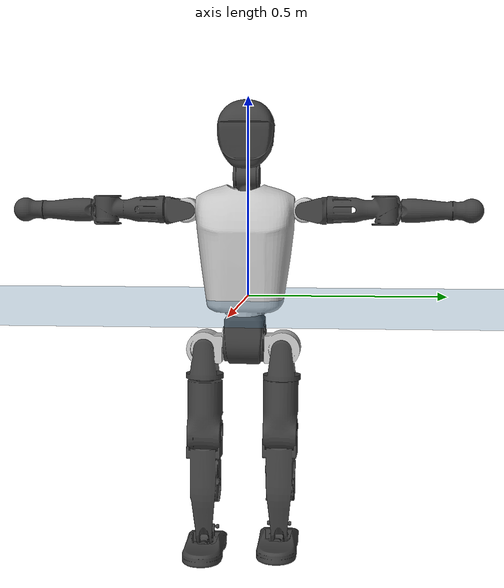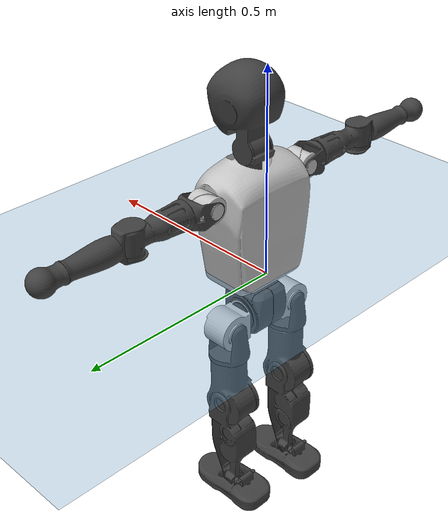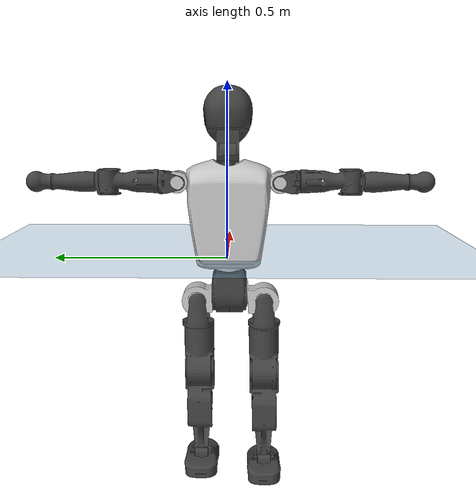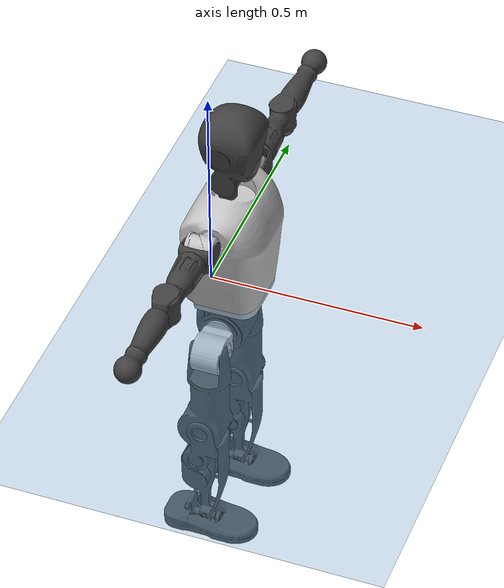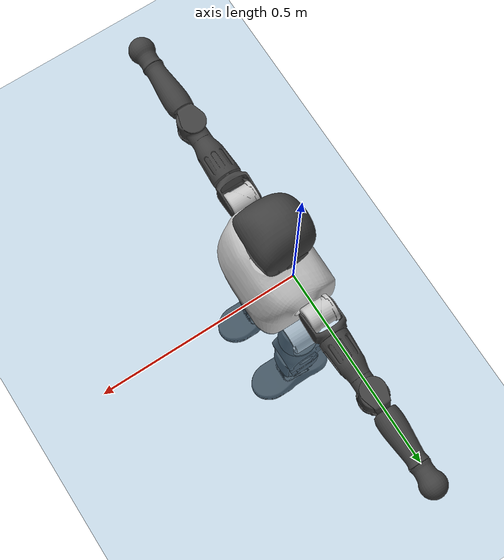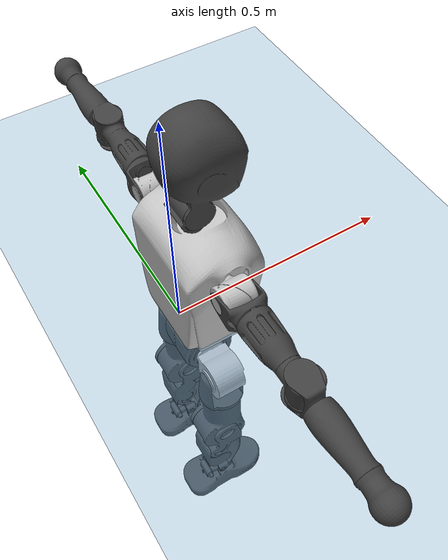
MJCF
<mujoco model="T1">
  <compiler angle="radian" assetdir="assets" balanceinertia="true" inertiafromgeom="false"/>

  <option timestep="0.005" density="1.2" viscosity="2e-05"/>

  <size nkey="1"/>

  <visual>
    <quality shadowsize="8192"/>
    <map shadowclip="0.5"/>
  </visual>

  <default>
    <default class="/">
      <joint armature="0.01" damping="0.01" frictionloss="0.1"/>
      <geom contype="0" conaffinity="0" group="1" solref="-1000 -80"/>
      <site size="0.01 0.005 0.005" group="5"/>
      <general forcelimited="true" biastype="affine" gainprm="25" biasprm="0 -25 -0.6"/>
      <default class="t1">
        <geom rgba="0.25 0.25 0.25 1"/>
        <default class="visual">
          <geom type="mesh" group="2"/>
        </default>
        <default class="collision">
          <geom group="3"/>
        </default>
        <default class="foot">
          <geom size="0.1115 0.05 0.015" type="box" condim="6" group="4" priority="1" solimp="0.015 1 0.015"/>
        </default>
        <default class="reward_collision_sphere">
          <geom group="5" rgba="1 0 0 1"/>
        </default>
      </default>
    </default>
  </default>

  <asset>
    <texture type="skybox" colorspace="auto" name="//unnamed_texture_0" builtin="gradient" rgb1="0.95 0.95 0.95" rgb2="0.95 0.95 0.95" width="100" height="600"/>
    <texture type="2d" colorspace="auto" name="texplane" builtin="checker" rgb1="0.345 0.575 0.748" rgb2="0.345 0.575 0.748" markrgb="1 1 1" width="512" height="512"/>
    <material name="MatPlane" class="/" texture="texplane" texuniform="true" texrepeat="2 2" specular="0.9"/>
    <mesh name="Trunk" class="/" file="Trunk.stl"/>
    <mesh name="H1" class="/" file="H1.stl"/>
    <mesh name="H2" class="/" file="H2.stl"/>
    <mesh name="AL1" class="/" file="AL1.stl"/>
    <mesh name="AL2" class="/" file="AL2.stl"/>
    <mesh name="AL3" class="/" file="AL3.stl"/>
    <mesh name="left_hand_link" class="/" file="left_hand_link.stl"/>
    <mesh name="AR1" class="/" file="AR1.stl"/>
    <mesh name="AR2" class="/" file="AR2.stl"/>
    <mesh name="AR3" class="/" file="AR3.stl"/>
    <mesh name="right_hand_link" class="/" file="right_hand_link.stl"/>
    <mesh name="Waist" class="/" file="Waist.stl"/>
    <mesh name="Hip_Pitch_Left" class="/" file="Hip_Pitch_Left.stl"/>
    <mesh name="Hip_Roll_Left" class="/" file="Hip_Roll_Left.stl"/>
    <mesh name="Hip_Yaw_Left" class="/" file="Hip_Yaw_Left.stl"/>
    <mesh name="Shank_Left" class="/" file="Shank_Left.stl"/>
    <mesh name="Ankle_Cross_Left" class="/" file="Ankle_Cross_Left.stl"/>
    <mesh name="left_foot_link" class="/" file="left_foot_link.stl"/>
    <mesh name="Hip_Pitch_Right" class="/" file="Hip_Pitch_Right.stl"/>
    <mesh name="Hip_Roll_Right" class="/" file="Hip_Roll_Right.stl"/>
    <mesh name="Hip_Yaw_Right" class="/" file="Hip_Yaw_Right.stl"/>
    <mesh name="Shank_Right" class="/" file="Shank_Right.stl"/>
    <mesh name="Ankle_Cross_Right" class="/" file="Ankle_Cross_Right.stl"/>
    <mesh name="right_foot_link" class="/" file="right_foot_link.stl"/>
  </asset>

  <worldbody>
    <geom name="floor" class="/" size="100 100 0.125" type="plane" group="0" material="MatPlane"/>
    <light name="toplight_shadow" class="/" pos="0 0 5" dir="0.0990148 0.0990148 -0.990148" type="directional" ambient="0.04 0.04 0.04" diffuse="0.55 0.55 0.55" specular="0.12 0.12 0.12"/>
    <light name="toplight_fill" class="/" pos="0 0 5" dir="0.0990148 0.0990148 -0.990148" type="directional" castshadow="false" ambient="0.04 0.04 0.04" diffuse="0.3 0.3 0.3" specular="0.08 0.08 0.08"/>
    <body name="trunk" childclass="t1" pos="-0.000764711 -0.00277851 0.00266382" quat="0.999999 -0.00132941 -0.00011085 -0.000335087">
      <inertial pos="0.0355728 -0.00111406 0.104293" quat="0.999956 0.000288954 -0.00941995 -0.00030191" mass="7.51635" diaginertia="0.0126787 0.0548503 0.0546417"/>
      <joint name="//unnamed_joint_0" type="free" armature="0" damping="0" frictionloss="0"/>
      <geom name="//unnamed_geom_1" class="visual" rgba="0.76 0.76 0.76 1" mesh="Trunk"/>
      <geom name="//unnamed_geom_2" class="collision" size="0.0647218 0.0862957 0.129444" pos="0.0401134 0 0.118119" type="box"/>
      <geom name="//unnamed_geom_3" class="reward_collision_sphere" size="0.09924" pos="0.0401134 0 0.0984325"/>
      <geom name="//unnamed_geom_4" class="reward_collision_sphere" size="0.0129444" pos="0.0401134 0.079559 0"/>
      <geom name="//unnamed_geom_5" class="reward_collision_sphere" size="0.0129444" pos="0.0401134 -0.079559 0"/>
      <geom name="//unnamed_geom_6" class="reward_collision_sphere" size="0.0129444" pos="0.0401134 0.100151 0.177179"/>
      <geom name="//unnamed_geom_7" class="reward_collision_sphere" size="0.0129444" pos="0.0401134 -0.100151 0.177179"/>
      <site name="imu" pos="0.0133213 0.00141711 -0.00215843" size="0.00862957"/>
      <camera name="track" pos="0 -1.87198 0" quat="0.707107 0.707107 0 0" mode="trackcom"/>
      <camera name="ego_camera" pos="0.081564 0 0.413417" quat="-0.5 -0.5 0.5 0.5"/>
      <body name="H1" pos="0.043869 0.00252571 0.236297" quat="1 1.76744e-05 -4.57054e-05 3.13289e-05">
        <inertial pos="-0.003853 -0.000717576 0.0591879" quat="0.76162 -0.0137844 0.0118903 0.647768" mass="0.28215" diaginertia="3.10963e-05 0.000161603 0.000134865"/>
        <joint name="AAHead_yaw" pos="0 0 0" axis="0.00412144 9.64266e-05 0.999992" stiffness="0.00219628" range="-1.59171 1.51576" armature="0.00737325" damping="0.0148161" frictionloss="0.0955253"/>
        <geom name="//unnamed_geom_8" class="visual" mesh="H1"/>
        <body name="H2" pos="0.000457381 -0.000217453 0.0630442" quat="1 -2.38779e-05 7.04529e-06 -2.45154e-05">
          <inertial pos="0.00398256 0.000525949 0.0974911" quat="0.988691 0.10444 -0.077303 -0.0748811" mass="0.395704" diaginertia="0.000257459 0.00134885 0.00158814"/>
          <joint name="Head_pitch" pos="0 0 0" axis="0.00404555 -0.999987 -0.00312663" range="-1.20969 0.334575" armature="0.00742642" damping="0.00669257" frictionloss="0.0880266"/>
          <geom name="//unnamed_geom_9" class="visual" mesh="H2"/>
          <geom name="//unnamed_geom_10" class="collision" size="0.0690365" pos="0.00668557 0 0.108276"/>
          <geom name="//unnamed_geom_11" class="reward_collision_sphere" size="0.0776661" pos="0.0133711 0 0.0984325"/>
        </body>
      </body>
      <body name="AL1" pos="0.0392477 0.0996212 0.215744" quat="1 -7.16097e-07 0.000443689 1.34592e-05">
        <inertial pos="-0.00263376 0.042064 -0.000653951" quat="0.50143 0.487636 -0.511407 0.499241" mass="0.343341" diaginertia="0.00018302 0.000943898 0.000278684"/>
        <joint name="Left_Shoulder_Pitch" pos="0 0 0" axis="0.011776 0.999929 0.00188154" stiffness="0.000796125" range="-3.30314 1.24041" armature="0.00845882" damping="0.00893319" frictionloss="0.0909314"/>
        <geom name="//unnamed_geom_12" class="visual" rgba="0.76 0.76 0.76 1" mesh="AL1"/>
        <body name="AL2" pos="0.00131251 0.0454657 -0.00137123" quat="1 0.000125466 7.3995e-05 -0.000103083">
          <inertial pos="0.00245125 0.0333152 -0.000195755" quat="0.48975 0.512662 -0.486596 0.510439" mass="0.103372" diaginertia="5.34189e-05 0.000246204 0.000165814"/>
          <joint name="Left_Shoulder_Roll" pos="0 0 0" axis="-0.999987 -0.00122974 0.00500085" range="-1.59684 1.78339" armature="0.0087053" damping="0.00657564" frictionloss="0.09041"/>
          <geom name="//unnamed_geom_13" class="visual" mesh="AL2"/>
          <body name="AL3" pos="0.00348813 0.0571612 0.00228746" quat="0.999999 0.00043969 -0.00136909 4.14019e-05">
            <inertial pos="-0.00276586 0.0794615 0.000183757" quat="0.704583 0.709606 -0.00329957 0.00322674" mass="0.677077" diaginertia="0.00175403 0.00888987 0.000570327"/>
            <joint name="Left_Elbow_Pitch" pos="0 0 0" axis="-0.000737341 -0.999998 -0.0019573" stiffness="0.00199193" range="-2.28345 2.26699" armature="0.00775073" damping="0.0109577" frictionloss="0.0906163"/>
            <geom name="//unnamed_geom_14" class="visual" mesh="AL3"/>
            <geom name="//unnamed_geom_15" class="collision" size="0.0258887 0.0647218" pos="0 0.0467994 0" quat="0.707105 0.707108 0 0" type="cylinder"/>
            <geom name="//unnamed_geom_16" class="reward_collision_sphere" size="0.0310664"/>
            <body name="left_hand_link" pos="-0.00107803 0.13785 -0.00151864" quat="0.999999 0.000520213 -0.000818237 -0.000916604">
              <inertial pos="-0.000616505 0.100335 0.00295403" quat="0.711052 0.703094 0.00663392 0.00433877" mass="0.204152" diaginertia="0.00108922 0.00566694 0.000185305"/>
              <joint name="Left_Elbow_Yaw" pos="0 0 0" axis="-0.00059759 -0.00116976 0.999999" stiffness="0.0110631" range="-2.42203 -0.0112759" armature="0.00901722" damping="0.0093832" frictionloss="0.0840275"/>
              <geom name="//unnamed_geom_17" class="visual" mesh="left_hand_link"/>
              <geom name="//unnamed_geom_18" class="collision" size="0.0258887 0.0755087" pos="0 0.121678 0" quat="0.707105 0.707108 0 0" type="cylinder"/>
              <geom name="//unnamed_geom_19" class="reward_collision_sphere" size="0.0431478"/>
              <geom name="//unnamed_geom_20" class="reward_collision_sphere" size="0.0302035" pos="0 0.102959 0"/>
              <geom name="//unnamed_geom_21" class="reward_collision_sphere" size="0.0302035" pos="0 0.201237 0"/>
            </body>
          </body>
        </body>
      </body>
      <body name="AR1" pos="0.0398355 -0.101083 0.214226" quat="1 8.58328e-05 0.000318675 0.000431198">
        <inertial pos="-0.000494267 -0.0450221 0.00240073" quat="0.500032 0.497528 -0.507045 0.495317" mass="0.332962" diaginertia="0.000177568 0.000877469 0.000263951"/>
        <joint name="Right_Shoulder_Pitch" pos="0 0 0" axis="0.0109186 -0.999931 -0.00426325" stiffness="0.0083292" range="-1.17101 3.31744" armature="0.00878757" damping="0.00661782" frictionloss="0.0980603"/>
        <geom name="//unnamed_geom_22" class="visual" rgba="0.76 0.76 0.76 1" mesh="AR1"/>
        <body name="AR2" pos="-0.000276519 -0.044862 -0.000665715" quat="1 -0.000612511 -0.000633318 4.24202e-05">
          <inertial pos="0.000356729 -0.0349638 -0.00156452" quat="0.517302 0.490503 -0.508259 0.483195" mass="0.104224" diaginertia="5.51274e-05 0.000254783 0.000163029"/>
          <joint name="Right_Shoulder_Roll" pos="0 0 0" axis="-0.999855 -0.00640066 -0.015787" range="-1.72752 1.56997" armature="0.0075405" damping="0.00606532" frictionloss="0.0908863"/>
          <geom name="//unnamed_geom_23" class="visual" mesh="AR2"/>
          <body name="AR3" pos="0.000480383 -0.0595432 0.00229635" quat="0.999999 0.001117 0.000696009 0.000289407">
            <inertial pos="0.00195297 -0.0804373 0.00281245" quat="0.70735 0.706862 0.0010283 0.00116803" mass="0.635123" diaginertia="0.00160978 0.0089168 0.00055182"/>
            <joint name="Right_Elbow_Pitch" pos="0 0 0" axis="1.05774e-05 1 -2.8831e-05" range="-2.25355 2.25566" armature="0.00844364" damping="0.00840775" frictionloss="0.0955565"/>
            <geom name="//unnamed_geom_24" class="visual" mesh="AR3"/>
            <geom name="//unnamed_geom_25" class="collision" size="0.0258887 0.0647218" pos="0 -0.0467994 0" quat="0.707105 0.707108 0 0" type="cylinder"/>
            <geom name="//unnamed_geom_26" class="reward_collision_sphere" size="0.0310664"/>
            <body name="right_hand_link" pos="-0.00290609 -0.139028 -0.00181694" quat="1 2.67032e-05 -9.45355e-05 7.35106e-05">
              <inertial pos="-0.000353215 -0.102511 0.0017487" quat="0.706965 0.707246 0.00143005 -0.0015745" mass="0.209328" diaginertia="0.00112538 0.00601819 0.000201529"/>
              <joint name="Right_Elbow_Yaw" pos="0 0 0" axis="0.0086917 -0.00528463 0.999948" range="0.0021979 2.43459" armature="0.00808147" damping="0.00467174" frictionloss="0.0947177"/>
              <geom name="//unnamed_geom_27" class="visual" mesh="right_hand_link"/>
              <geom name="//unnamed_geom_28" class="collision" size="0.0258887 0.0755087" pos="0 -0.121678 0" quat="0.707105 0.707108 0 0" type="cylinder"/>
              <geom name="//unnamed_geom_29" class="reward_collision_sphere" size="0.0431478"/>
              <geom name="//unnamed_geom_30" class="reward_collision_sphere" size="0.0302035" pos="0 -0.102959 0"/>
              <geom name="//unnamed_geom_31" class="reward_collision_sphere" size="0.0302035" pos="0 -0.201237 0"/>
            </body>
          </body>
        </body>
      </body>
      <body name="Waist" pos="0.0403145 -0.00234425 -0.113088" quat="0.999999 -0.0012387 0.000524677 -0.000909597">
        <inertial pos="-0.00138459 0.002044 0.00480787" quat="0.984549 -0.0109725 -0.174751 0.0022936" mass="1.60628" diaginertia="0.000723204 0.00381943 0.00442754"/>
        <joint name="Waist" pos="0 0 0" axis="0.0108692 -0.00135716 0.99994" stiffness="0.00449106" range="-1.56814 1.55579" armature="0.00856135" damping="0.0167541" frictionloss="0.0879303"/>
        <geom name="//unnamed_geom_32" class="visual" mesh="Waist"/>
        <body name="Hip_Pitch_Left" pos="0.000125146 0.0960574 0.00153095" quat="1 4.70985e-06 1.70608e-05 -2.33193e-06">
          <inertial pos="0.00326327 -0.00743961 -0.0182189" quat="0.972824 0.231037 0.0113279 0.0103281" mass="0.667206" diaginertia="0.000238969 0.00111226 0.00119126"/>
          <joint name="Left_Hip_Pitch" pos="0 0 0" axis="-0.00656065 0.999948 0.00774388" stiffness="0.0138858" range="-1.78287 1.59072" armature="0.00946806" damping="0.00992726" frictionloss="0.0859129"/>
          <geom name="//unnamed_geom_33" class="visual" rgba="0.76 0.76 0.76 1" mesh="Hip_Pitch_Left"/>
          <body name="Hip_Roll_Left" pos="-0.00148336 -0.00194169 -0.0210404" quat="1 -0.000335294 0.000188011 0.000125128">
            <inertial pos="0.000431155 -0.00232206 -0.0542189" quat="0.707061 -0.00595188 -0.00601908 0.707102" mass="0.23904" diaginertia="0.000217537 0.00102232 0.000473208"/>
            <joint name="Left_Hip_Roll" pos="0 0 0" axis="-0.999983 0.00178823 0.00553026" range="-1.54918 0.236515" armature="0.00827022" damping="0.0024776" frictionloss="0.098012"/>
            <geom name="//unnamed_geom_34" class="visual" mesh="Hip_Roll_Left"/>
            <geom name="//unnamed_geom_35" class="reward_collision_sphere" size="0.0474626"/>
            <body name="Hip_Yaw_Left" pos="0.00224059 -0.00246853 -0.078735" quat="0.999999 -0.00105017 -6.67409e-05 0.000184184">
              <inertial pos="-0.0054129 -0.000800983 -0.0906028" quat="0.696294 -0.0341662 -0.032145 0.716222" mass="1.37254" diaginertia="0.00332334 0.0176396 0.00231697"/>
              <joint name="Left_Hip_Yaw" pos="0 0 0" axis="0.0043285 -0.00374291 -0.999984" range="-1.05119 1.02761" armature="0.00855743" damping="0.00852585" frictionloss="0.0870148"/>
              <geom name="//unnamed_geom_36" class="visual" mesh="Hip_Yaw_Left"/>
              <geom name="//unnamed_geom_37" class="collision" size="0.0431478 0.0690365" type="cylinder"/>
              <body name="Shank_Left" pos="-0.00783493 -0.000286616 -0.131733" quat="1 -2.36579e-05 1.91339e-06 -7.98569e-06">
                <inertial pos="-0.00668988 0.00117604 -0.122779" quat="0.99719 0.0104269 -0.0238498 0.0702452" mass="1.09272" diaginertia="0.00472739 0.0238145 0.00164095"/>
                <joint name="Left_Knee_Pitch" pos="0 0 0" axis="0.0016426 0.999999 -0.000166383" range="-0.00432853 2.29365" armature="0.00985564" damping="0" frictionloss="0.0870824"/>
                <geom name="//unnamed_geom_38" class="visual" mesh="Shank_Left"/>
                <geom name="//unnamed_geom_39" class="collision" size="0.0431478 0.0647218" pos="0 0 -0.118119" type="cylinder"/>
                <geom name="//unnamed_geom_40" class="reward_collision_sphere" size="0.0560922"/>
                <body name="Ankle_Cross_Left" pos="0.00292735 -0.000161095 -0.275338" quat="1 -0.000746502 -0.000442245 4.36415e-05">
                  <inertial pos="-0.00458068 -0.00114257 -0.00604329" quat="0.443861 0.551179 0.550341 0.443072" mass="0.0464967" diaginertia="3.78992e-06 1.84983e-05 1.06288e-05"/>
                  <joint name="Left_Ankle_Pitch" pos="0 0 0" axis="0.00122943 0.999998 0.00124698" range="-0.871389 0.352244" armature="0.00957756" damping="0.0228162" frictionloss="0.0858119"/>
                  <geom name="//unnamed_geom_41" class="visual" mesh="Ankle_Cross_Left"/>
                  <body name="left_foot_link" pos="-0.00125058 -0.00301703 -0.00977323" quat="0.999999 0.000748751 -6.70679e-05 -0.000735766">
                    <inertial pos="-0.00288328 -0.00169083 -0.00783284" quat="-0.0113529 0.623703 0.00624345 0.781554" mass="0.45523" diaginertia="0.000363635 0.00170423 0.00207983"/>
                    <joint name="Left_Ankle_Roll" pos="0 0 0" axis="-0.999933 -0.00790033 -0.00844772" range="-0.441258 0.488187" armature="0.00861615" damping="0" frictionloss="0.0892167"/>
                    <geom name="//unnamed_geom_42" class="visual" mesh="left_foot_link"/>
                    <geom name="left_foot" class="foot" size="0.108014 0.0382903 0.0139994" pos="0.00668557 0 -0.0147649"/>
                    <geom name="//unnamed_geom_44" class="reward_collision_sphere" size="0.0448738" pos="0.00668557 0 -0.0147649"/>
                    <geom name="//unnamed_geom_45" class="reward_collision_sphere" size="0.0258887" pos="0.063513 -0.0215277 -0.0147649"/>
                    <geom name="//unnamed_geom_46" class="reward_collision_sphere" size="0.0258887" pos="-0.046799 -0.0215277 -0.0147649"/>
                    <site name="left_foot" class="foot" pos="0.00668557 0 -0.0147649" size="0.00862957"/>
                  </body>
                </body>
              </body>
            </body>
          </body>
        </body>
        <body name="Hip_Pitch_Right" pos="-0.00098274 -0.101092 -0.000146107" quat="1 -0.000589293 -4.78617e-05 -9.89099e-05">
          <inertial pos="-0.00234336 0.00430533 -0.0178305" quat="0.973714 -0.227307 0.0141401 -0.00348793" mass="0.654784" diaginertia="0.00024874 0.00108204 0.00115237"/>
          <joint name="Right_Hip_Pitch" pos="0 0 0" axis="-0.0014126 -0.999992 0.0037718" range="-1.55797 1.75014" armature="0.00834358" damping="0" frictionloss="0.0899809"/>
          <geom name="//unnamed_geom_47" class="visual" rgba="0.76 0.76 0.76 1" mesh="Hip_Pitch_Right"/>
          <body name="Hip_Roll_Right" pos="-0.0030768 -0.000867254 -0.0200528" quat="0.999999 -0.000270844 -0.000723101 -0.000919978">
            <inertial pos="-0.00148001 -8.3995e-05 -0.0501706" quat="0.713732 -0.00164974 -0.0151499 0.700253" mass="0.253696" diaginertia="0.000243418 0.00110649 0.000481222"/>
            <joint name="Right_Hip_Roll" pos="0 0 0" axis="-0.99999 -0.0044329 0.0002937" stiffness="0.00244043" range="-0.178715 1.57138" armature="0.00844853" damping="0.00711273" frictionloss="0.0971385"/>
            <geom name="//unnamed_geom_48" class="visual" mesh="Hip_Roll_Right"/>
            <geom name="//unnamed_geom_49" class="reward_collision_sphere" size="0.0474626"/>
            <body name="Hip_Yaw_Right" pos="-0.00133993 0.000369541 -0.0842636" quat="1 -0.000240146 -3.40521e-05 9.12017e-05">
              <inertial pos="-0.00377657 -0.000168766 -0.08577" quat="0.715333 -0.03288 -0.0330383 0.697227" mass="1.41162" diaginertia="0.00358148 0.0184867 0.00249034"/>
              <joint name="Right_Hip_Yaw" pos="0 0 0" axis="-0.0034802 0.00245159 -0.999991" range="-1.01564 0.990955" armature="0.00814951" damping="0.0197071" frictionloss="0.0849443"/>
              <geom name="//unnamed_geom_50" class="visual" mesh="Hip_Yaw_Right"/>
              <geom name="//unnamed_geom_51" class="collision" size="0.0431478 0.0690365" type="cylinder"/>
              <body name="Shank_Right" pos="-0.011351 -0.000822086 -0.134439" quat="1 0.000212854 -2.46942e-05 -2.18243e-06">
                <inertial pos="-0.00340446 -0.00300614 -0.120684" quat="0.999155 0.00869397 -0.0161967 -0.0367536" mass="1.18881" diaginertia="0.00465979 0.0250866 0.00175224"/>
                <joint name="Right_Knee_Pitch" pos="0 0 0" axis="0.00796691 -0.999967 0.00170745" range="-2.39456 0.00603254" armature="0.00887958" damping="0.00902349" frictionloss="0.0909443"/>
                <geom name="//unnamed_geom_52" class="visual" mesh="Shank_Right"/>
                <geom name="//unnamed_geom_53" class="collision" size="0.0431478 0.0647218" pos="0 0 -0.118119" type="cylinder"/>
                <geom name="//unnamed_geom_54" class="reward_collision_sphere" size="0.0560922"/>
                <body name="Ankle_Cross_Right" pos="-0.00140684 -0.0010781 -0.27877" quat="1 -5.13877e-05 -0.000104321 -0.000101138">
                  <inertial pos="-0.0025898 0.00220143 -0.00792697" quat="0.443146 0.551061 0.551108 0.442982" mass="0.0456548" diaginertia="4.00847e-06 1.79092e-05 1.08455e-05"/>
                  <joint name="Right_Ankle_Pitch" pos="0 0 0" axis="0.0126432 -0.999914 0.00347492" range="-0.304902 0.815253" armature="0.0086297" damping="0.0164713" frictionloss="0.0866403"/>
                  <geom name="//unnamed_geom_55" class="visual" mesh="Ankle_Cross_Right"/>
                  <body name="right_foot_link" pos="0.00168183 0.00175812 -0.0135669" quat="1 -0.000123305 -2.69666e-05 0.000158282">
                    <inertial pos="3.78507e-05 0.0026769 -0.0112696" quat="-0.00469283 0.611051 -0.00448707 0.791565" mass="0.421724" diaginertia="0.000346697 0.00166958 0.00190719"/>
                    <joint name="Right_Ankle_Roll" pos="0 0 0" axis="-1 -0.000273771 -0.000290325" range="-0.494244 0.491822" armature="0.00778463" damping="0.000725833" frictionloss="0.0974471"/>
                    <geom name="//unnamed_geom_56" class="visual" mesh="right_foot_link"/>
                    <geom name="right_foot" class="foot" size="0.0987351 0.0384999 0.0141358" pos="0.00668557 0 -0.0147649"/>
                    <geom name="//unnamed_geom_58" class="reward_collision_sphere" size="0.0345183"/>
                    <geom name="//unnamed_geom_59" class="reward_collision_sphere" size="0.0258887" pos="0.00668557 0 -0.0147649"/>
                    <geom name="//unnamed_geom_60" class="reward_collision_sphere" size="0.0258887" pos="0.063513 0.0215277 -0.0147649"/>
                    <geom name="//unnamed_geom_61" class="reward_collision_sphere" size="0.0258887" pos="-0.046799 0.0215277 -0.0147649"/>
                    <site name="right_foot" class="foot" pos="0.00668557 0 -0.0147649" size="0.00862957"/>
                  </body>
                </body>
              </body>
            </body>
          </body>
        </body>
      </body>
    </body>
  </worldbody>

  <contact>
    <pair class="/" geom1="floor" geom2="left_foot" name="//unnamed_contact_0"/>
    <pair class="/" geom1="floor" geom2="right_foot" name="//unnamed_contact_1"/>
  </contact>

  <actuator>
    <general name="AAHead_yaw" class="/" joint="AAHead_yaw" forcerange="-6.00657 6.00657" gainprm="20.8389" biasprm="0 -20.8389 -0.531465"/>
    <general name="Head_pitch" class="/" joint="Head_pitch" forcerange="-6.12365 6.12365" gainprm="20.8389" biasprm="0 -20.8389 -0.531465"/>
    <general name="Left_Shoulder_Pitch" class="/" joint="Left_Shoulder_Pitch" forcerange="-14.2209 14.2209" gainprm="20.8389" biasprm="0 -20.8389 -0.531465"/>
    <general name="Left_Shoulder_Roll" class="/" joint="Left_Shoulder_Roll" forcerange="-13.866 13.866" gainprm="20.8389" biasprm="0 -20.8389 -0.531465"/>
    <general name="Left_Elbow_Pitch" class="/" joint="Left_Elbow_Pitch" forcerange="-17.0146 17.0146" gainprm="20.8389" biasprm="0 -20.8389 -0.531465"/>
    <general name="Left_Elbow_Yaw" class="/" joint="Left_Elbow_Yaw" forcerange="-15.3822 15.3822" gainprm="20.8389" biasprm="0 -20.8389 -0.531465"/>
    <general name="Right_Shoulder_Pitch" class="/" joint="Right_Shoulder_Pitch" forcerange="-16.0965 16.0965" gainprm="20.8389" biasprm="0 -20.8389 -0.531465"/>
    <general name="Right_Shoulder_Roll" class="/" joint="Right_Shoulder_Roll" forcerange="-17.0489 17.0489" gainprm="20.8389" biasprm="0 -20.8389 -0.531465"/>
    <general name="Right_Elbow_Pitch" class="/" joint="Right_Elbow_Pitch" forcerange="-14.9878 14.9878" gainprm="20.8389" biasprm="0 -20.8389 -0.531465"/>
    <general name="Right_Elbow_Yaw" class="/" joint="Right_Elbow_Yaw" forcerange="-15.6736 15.6736" gainprm="20.8389" biasprm="0 -20.8389 -0.531465"/>
    <general name="Waist" class="/" joint="Waist" forcerange="-23.3173 23.3173" gainprm="20.8389" biasprm="0 -20.8389 -0.531465"/>
    <general name="Left_Hip_Pitch" class="/" joint="Left_Hip_Pitch" forcerange="-37.227 37.227" gainprm="20.8389" biasprm="0 -20.8389 -0.531465"/>
    <general name="Left_Hip_Roll" class="/" joint="Left_Hip_Roll" forcerange="-26.5113 26.5113" gainprm="20.8389" biasprm="0 -20.8389 -0.531465"/>
    <general name="Left_Hip_Yaw" class="/" joint="Left_Hip_Yaw" forcerange="-23.9608 23.9608" gainprm="20.8389" biasprm="0 -20.8389 -0.531465"/>
    <general name="Left_Knee_Pitch" class="/" joint="Left_Knee_Pitch" forcerange="-50.2686 50.2686" gainprm="20.8389" biasprm="0 -20.8389 -0.531465"/>
    <general name="Left_Ankle_Pitch" class="/" joint="Left_Ankle_Pitch" forcerange="-17.1457 17.1457" gainprm="20.8389" biasprm="0 -20.8389 -0.531465"/>
    <general name="Left_Ankle_Roll" class="/" joint="Left_Ankle_Roll" forcerange="-13.0266 13.0266" gainprm="20.8389" biasprm="0 -20.8389 -0.531465"/>
    <general name="Right_Hip_Pitch" class="/" joint="Right_Hip_Pitch" forcerange="-42.8464 42.8464" gainprm="20.8389" biasprm="0 -20.8389 -0.531465"/>
    <general name="Right_Hip_Roll" class="/" joint="Right_Hip_Roll" forcerange="-28.078 28.078" gainprm="20.8389" biasprm="0 -20.8389 -0.531465"/>
    <general name="Right_Hip_Yaw" class="/" joint="Right_Hip_Yaw" forcerange="-25.5964 25.5964" gainprm="20.8389" biasprm="0 -20.8389 -0.531465"/>
    <general name="Right_Knee_Pitch" class="/" joint="Right_Knee_Pitch" forcerange="-55.0236 55.0236" gainprm="20.8389" biasprm="0 -20.8389 -0.531465"/>
    <general name="Right_Ankle_Pitch" class="/" joint="Right_Ankle_Pitch" forcerange="-15.734 15.734" gainprm="20.8389" biasprm="0 -20.8389 -0.531465"/>
    <general name="Right_Ankle_Roll" class="/" joint="Right_Ankle_Roll" forcerange="-14.2894 14.2894" gainprm="20.8389" biasprm="0 -20.8389 -0.531465"/>
  </actuator>

  <sensor>
    <gyro site="imu" name="imu_angular_velocity"/>
    <velocimeter site="imu" name="imu_linear_velocity"/>
    <framelinvel objtype="site" objname="left_foot" name="left_foot_global_linear_velocity"/>
    <framelinvel objtype="site" objname="right_foot" name="right_foot_global_linear_velocity"/>
  </sensor>

  <keyframe>
    <key name="home" qpos="0 0 0.6385 1 0 0 0 0 0 0 1.4 0 -0.4 0 -1.4 0 0.4 0 -0.4 0 0 0.8 -0.4 0 0.4 0 0 -0.8 0.4 0"/>
  </keyframe>
</mujoco>
